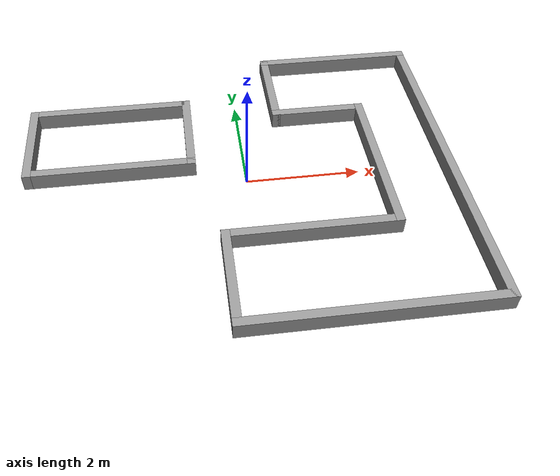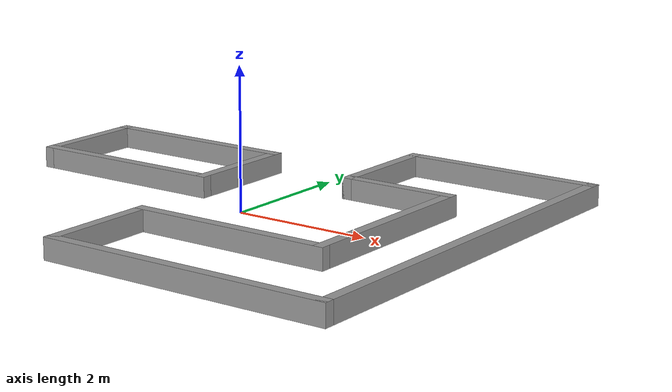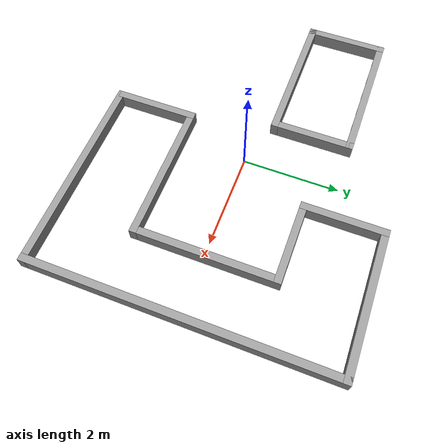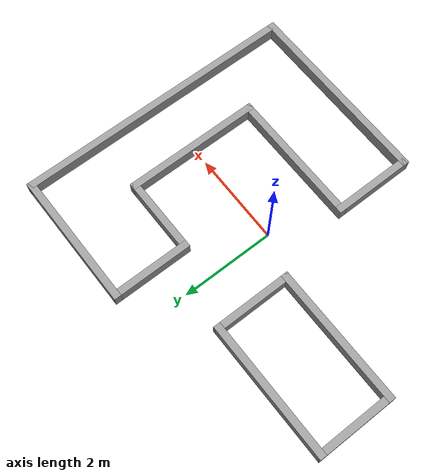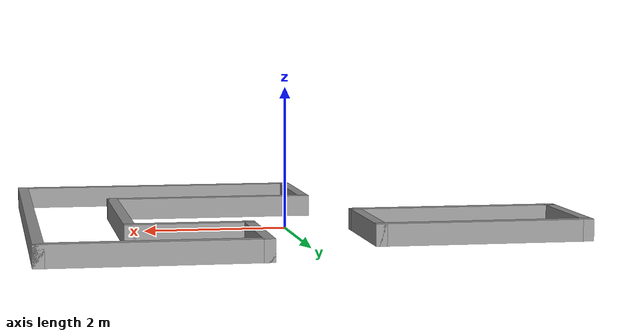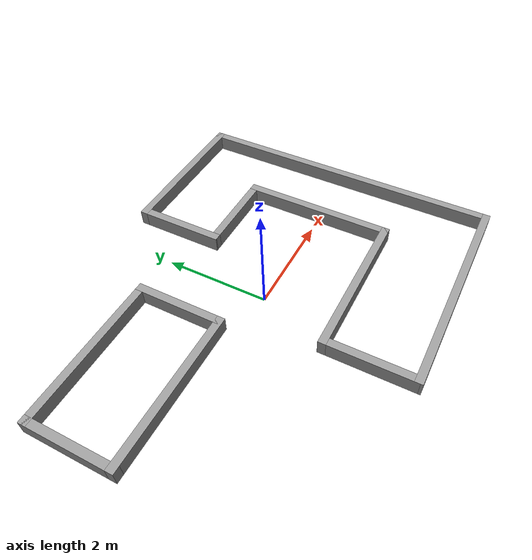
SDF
<?xml version='1.0'?>
<sdf version='1.6'>
  <model name='open'>
    <pose frame=''>-0.104 0.017 0 0 -0 0</pose>
    <link name='Wall_0'>
      <collision name='Wall_0_Collision'>
        <geometry>
          <box>
            <size>3 0.15 0.3</size>
          </box>
        </geometry>
        <pose frame=''>0 0 0.15 0 -0 0</pose>
      </collision>
      <visual name='Wall_0_Visual'>
        <pose frame=''>0 0 0.15 0 -0 0</pose>
        <geometry>
          <box>
            <size>3 0.15 0.3</size>
          </box>
        </geometry>
        <material>
          <script>
            <uri>file://media/materials/scripts/gazebo.material</uri>
            <name>Gazebo/Grey</name>
          </script>
          <ambient>1 1 1 1</ambient>
        </material>
        <meta>
          <layer>0</layer>
        </meta>
      </visual>
      <pose frame=''>-2.265 1.93 0 0 -0 0</pose>
    </link>
    <link name='Wall_1'>
      <collision name='Wall_1_Collision'>
        <geometry>
          <box>
            <size>1.75 0.15 0.3</size>
          </box>
        </geometry>
        <pose frame=''>0 0 0.15 0 -0 0</pose>
      </collision>
      <visual name='Wall_1_Visual'>
        <pose frame=''>0 0 0.15 0 -0 0</pose>
        <geometry>
          <box>
            <size>1.75 0.15 0.3</size>
          </box>
        </geometry>
        <material>
          <script>
            <uri>file://media/materials/scripts/gazebo.material</uri>
            <name>Gazebo/Grey</name>
          </script>
          <ambient>1 1 1 1</ambient>
        </material>
        <meta>
          <layer>0</layer>
        </meta>
      </visual>
      <pose frame=''>-0.84 1.13 0 0 -0 -1.5708</pose>
    </link>
    <link name='Wall_13'>
      <collision name='Wall_13_Collision'>
        <geometry>
          <box>
            <size>3 0.15 0.3</size>
          </box>
        </geometry>
        <pose frame=''>0 0 0.15 0 -0 0</pose>
      </collision>
      <visual name='Wall_13_Visual'>
        <pose frame=''>0 0 0.15 0 -0 0</pose>
        <geometry>
          <box>
            <size>3 0.15 0.3</size>
          </box>
        </geometry>
        <material>
          <script>
            <uri>file://media/materials/scripts/gazebo.material</uri>
            <name>Gazebo/Grey</name>
          </script>
          <ambient>1 1 1 1</ambient>
        </material>
        <meta>
          <layer>0</layer>
        </meta>
      </visual>
      <pose frame=''>2.265 3.05 0 0 -0 0</pose>
    </link>
    <link name='Wall_15'>
      <collision name='Wall_15_Collision'>
        <geometry>
          <box>
            <size>6.25 0.15 0.3</size>
          </box>
        </geometry>
        <pose frame=''>0 0 0.15 0 -0 0</pose>
      </collision>
      <visual name='Wall_15_Visual'>
        <pose frame=''>0 0 0.15 0 -0 0</pose>
        <geometry>
          <box>
            <size>6.25 0.15 0.3</size>
          </box>
        </geometry>
        <material>
          <script>
            <uri>file://media/materials/scripts/gazebo.material</uri>
            <name>Gazebo/Grey</name>
          </script>
          <ambient>1 1 1 1</ambient>
        </material>
        <meta>
          <layer>0</layer>
        </meta>
      </visual>
      <pose frame=''>3.69 0 0 0 -0 -1.5708</pose>
    </link>
    <link name='Wall_16'>
      <collision name='Wall_16_Collision'>
        <geometry>
          <box>
            <size>4.25 0.15 0.3</size>
          </box>
        </geometry>
        <pose frame=''>0 0 0.15 0 -0 0</pose>
      </collision>
      <visual name='Wall_16_Visual'>
        <pose frame=''>0 0 0.15 0 -0 0</pose>
        <geometry>
          <box>
            <size>4.25 0.15 0.3</size>
          </box>
        </geometry>
        <material>
          <script>
            <uri>file://media/materials/scripts/gazebo.material</uri>
            <name>Gazebo/Grey</name>
          </script>
          <ambient>1 1 1 1</ambient>
        </material>
        <meta>
          <layer>0</layer>
        </meta>
      </visual>
      <pose frame=''>1.64 -3.05 0 0 -0 3.14159</pose>
    </link>
    <link name='Wall_2'>
      <collision name='Wall_2_Collision'>
        <geometry>
          <box>
            <size>3 0.15 0.3</size>
          </box>
        </geometry>
        <pose frame=''>0 0 0.15 0 -0 0</pose>
      </collision>
      <visual name='Wall_2_Visual'>
        <pose frame=''>0 0 0.15 0 -0 0</pose>
        <geometry>
          <box>
            <size>3 0.15 0.3</size>
          </box>
        </geometry>
        <material>
          <script>
            <uri>file://media/materials/scripts/gazebo.material</uri>
            <name>Gazebo/Grey</name>
          </script>
          <ambient>1 1 1 1</ambient>
        </material>
        <meta>
          <layer>0</layer>
        </meta>
      </visual>
      <pose frame=''>-2.265 0.33 0 0 -0 3.14159</pose>
    </link>
    <link name='Wall_3'>
      <collision name='Wall_3_Collision'>
        <geometry>
          <box>
            <size>1.75 0.15 0.3</size>
          </box>
        </geometry>
        <pose frame=''>0 0 0.15 0 -0 0</pose>
      </collision>
      <visual name='Wall_3_Visual'>
        <pose frame=''>0 0 0.15 0 -0 0</pose>
        <geometry>
          <box>
            <size>1.75 0.15 0.3</size>
          </box>
        </geometry>
        <material>
          <script>
            <uri>file://media/materials/scripts/gazebo.material</uri>
            <name>Gazebo/Grey</name>
          </script>
          <ambient>1 1 1 1</ambient>
        </material>
        <meta>
          <layer>0</layer>
        </meta>
      </visual>
      <pose frame=''>-3.69 1.13 0 0 -0 1.5708</pose>
    </link>
    <link name='Wall_5'>
      <collision name='Wall_5_Collision'>
        <geometry>
          <box>
            <size>1.75 0.15 0.3</size>
          </box>
        </geometry>
        <pose frame=''>0 0 0.15 0 -0 0</pose>
      </collision>
      <visual name='Wall_5_Visual'>
        <pose frame=''>0 0 0.15 0 -0 0</pose>
        <geometry>
          <box>
            <size>1.75 0.15 0.3</size>
          </box>
        </geometry>
        <material>
          <script>
            <uri>file://media/materials/scripts/gazebo.material</uri>
            <name>Gazebo/Grey</name>
          </script>
          <ambient>1 1 1 1</ambient>
        </material>
        <meta>
          <layer>0</layer>
        </meta>
      </visual>
      <pose frame=''>0.84 2.25 0 0 -0 -1.5708</pose>
    </link>
    <link name='Wall_6'>
      <collision name='Wall_6_Collision'>
        <geometry>
          <box>
            <size>1.75 0.15 0.3</size>
          </box>
        </geometry>
        <pose frame=''>0 0 0.15 0 -0 0</pose>
      </collision>
      <visual name='Wall_6_Visual'>
        <pose frame=''>0 0 0.15 0 -0 0</pose>
        <geometry>
          <box>
            <size>1.75 0.15 0.3</size>
          </box>
        </geometry>
        <material>
          <script>
            <uri>file://media/materials/scripts/gazebo.material</uri>
            <name>Gazebo/Grey</name>
          </script>
          <ambient>1 1 1 1</ambient>
        </material>
        <meta>
          <layer>0</layer>
        </meta>
      </visual>
      <pose frame=''>1.64 1.45 0 0 -0 0</pose>
    </link>
    <link name='Wall_7'>
      <collision name='Wall_7_Collision'>
        <geometry>
          <box>
            <size>3 0.15 0.3</size>
          </box>
        </geometry>
        <pose frame=''>0 0 0.15 0 -0 0</pose>
      </collision>
      <visual name='Wall_7_Visual'>
        <pose frame=''>0 0 0.15 0 -0 0</pose>
        <geometry>
          <box>
            <size>3 0.15 0.3</size>
          </box>
        </geometry>
        <material>
          <script>
            <uri>file://media/materials/scripts/gazebo.material</uri>
            <name>Gazebo/Grey</name>
          </script>
          <ambient>1 1 1 1</ambient>
        </material>
        <meta>
          <layer>0</layer>
        </meta>
      </visual>
      <pose frame=''>2.44 0.025 0 0 -0 -1.5708</pose>
    </link>
    <link name='Wall_8'>
      <collision name='Wall_8_Collision'>
        <geometry>
          <box>
            <size>3 0.15 0.3</size>
          </box>
        </geometry>
        <pose frame=''>0 0 0.15 0 -0 0</pose>
      </collision>
      <visual name='Wall_8_Visual'>
        <pose frame=''>0 0 0.15 0 -0 0</pose>
        <geometry>
          <box>
            <size>3 0.15 0.3</size>
          </box>
        </geometry>
        <material>
          <script>
            <uri>file://media/materials/scripts/gazebo.material</uri>
            <name>Gazebo/Grey</name>
          </script>
          <ambient>1 1 1 1</ambient>
        </material>
        <meta>
          <layer>0</layer>
        </meta>
      </visual>
      <pose frame=''>1.015 -1.4 0 0 -0 3.14159</pose>
    </link>
    <link name='Wall_9'>
      <collision name='Wall_9_Collision'>
        <geometry>
          <box>
            <size>1.75 0.15 0.3</size>
          </box>
        </geometry>
        <pose frame=''>0 0 0.15 0 -0 0</pose>
      </collision>
      <visual name='Wall_9_Visual'>
        <pose frame=''>0 0 0.15 0 -0 0</pose>
        <geometry>
          <box>
            <size>1.75 0.15 0.3</size>
          </box>
        </geometry>
        <material>
          <script>
            <uri>file://media/materials/scripts/gazebo.material</uri>
            <name>Gazebo/Grey</name>
          </script>
          <ambient>1 1 1 1</ambient>
        </material>
        <meta>
          <layer>0</layer>
        </meta>
      </visual>
      <pose frame=''>-0.41 -2.2 0 0 -0 -1.5708</pose>
    </link>
    <static>1</static>
  </model>
</sdf>
